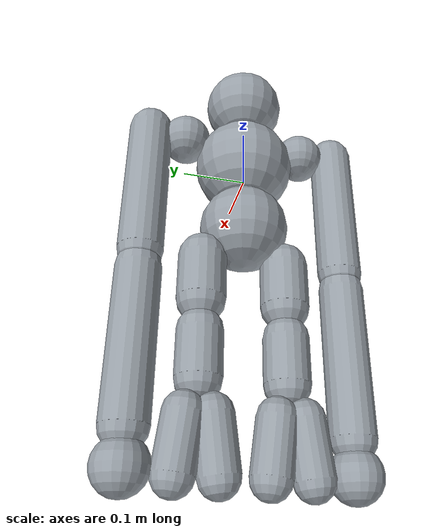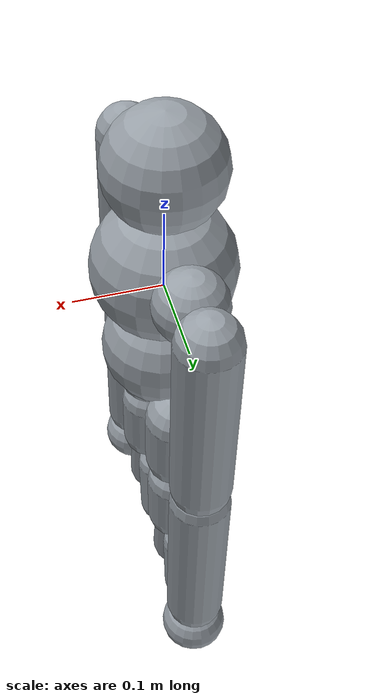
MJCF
<mujoco>
    <compiler angle="degree" inertiafromgeom="true"/>
    <default>
        <joint armature="0.01" damping=".1" limited="true"/>
        <geom conaffinity="3" condim="3" contype="3" friction="1.2 0.1 0.1" density="700" rgba="0.6 0.63 0.66 1"/>
    </default>
    <worldbody>
        <body name="gibbon3d" pos="0 0 0">
            <joint armature="0" axis="1 0 0" damping="0" limited="false" name="ignorex" pos="0 0 0" stiffness="0" type="slide"/>
            <joint armature="0" axis="0 0 1" damping="0" limited="false" name="ignorez" pos="0 0 0" stiffness="0" type="slide"/>
            <joint armature="0" axis="0 1 0" damping="0" limited="false" name="ignorey" pos="0 0 0" stiffness="0" type="hinge"/>
            <body name="torso" pos="0 0 0.03">
                <geom pos="0 0 0" size=".08" conaffinity="1" contype="1" type="sphere"/>
            </body>
            <body name="head" pos="0 0 0.16">
                <geom pos="0 0 0" size=".065" type="sphere"/>
            </body>
            <geom pos="0 -0.1 0.07" size=".04" conaffinity="0" contype="0" type="sphere"/>
            <geom pos="0 0.1 0.07" size=".04" conaffinity="0" contype="0" type="sphere"/>
            <body name="waist" pos="0 0 -0.15">

                <body name="pelvis_marker" pos="0 0 0.06">
                    <geom pos="0 0 0" size="0.01" conaffinity="0" contype="0" type="sphere" mass="0" />
                </body>
                <joint axis="0 1 0" name="abdomen_y" pos="0 0 0.095" range="-80 15" stiffness="0" type="hinge"/>
                <body name="pelvis" pos="0 0 -0.04">
                    <geom pos="0 0 0.1" size="0.07" conaffinity="2" contype="2" type="sphere"/>
                    <body name="right_thigh" pos="0 -0.065 0.04">
                        <joint axis="0 1 0" name="right_hip_y" pos="0 0 0" range="-100 20" stiffness="0" type="hinge"/>
                        <geom fromto="0 0 0 0 0 -.07" size="0.0375" type="capsule"/>
                        <body name="right_shin" pos="0 0 -0.12">
                            <joint axis="0 1 0" name="right_knee" pos="0 0 .02" range="-5 160" stiffness="0" type="hinge"/>
                            <geom fromto="0 0 0 0 0 -.07" size="0.035" type="capsule"/>
                            <body name="right_foot" pos="0 0 -0.12">
                                <joint axis="0 1 0" name="right_ankle" pos="0 0 0" range="-110 -50" stiffness="0" type="hinge"/>
                                <geom fromto="-0.01 0.02 0 -0.01 0.03 -0.08" type="capsule" size="0.03"/>
                                <geom fromto="-0.01 -0.02 0 -0.01 -0.03 -0.08" type="capsule" size="0.03"/>
                            </body>
                        </body>
                    </body>
                    <body name="left_thigh" pos="0 0.065 0.04">
                        <joint axis="0 1 0" name="left_hip_y" pos="0 0 0" range="-100 20" stiffness="0" type="hinge"/>
                        <geom fromto="0 0 0 0 0 -.07" size="0.0375" type="capsule"/>
                        <body name="left_shin" pos="0 0 -0.12">
                            <joint axis="0 1 0" name="left_knee" pos="0 0 .02" range="-5 160" stiffness="0" type="hinge"/>
                            <geom fromto="0 0 0 0 0 -.07" size="0.035" type="capsule"/>
                            <body name="left_foot" pos="0 0 -0.12">
                                <joint axis="0 1 0" name="left_ankle" pos="0 0 0" range="-110 -50" stiffness="0" type="hinge"/>
                                <geom fromto="-0.01 0.02 0 -0.01 0.03 -0.08" type="capsule" size="0.03"/>
                                <geom fromto="-0.01 -0.02 0 -0.01 -0.03 -0.08" type="capsule" size="0.03"/>
                            </body>
                        </body>
                    </body>
                </body>
            </body>
            <body name="right_upper_arm" pos="0 -0.16 0.08">
                <joint axis="0 1 0" name="right_shoulder_y" pos="0 0 0" range="-240 35" limited="false" stiffness="0" type="hinge"/>
                <geom fromto="0 0 0 0 0 -.23" size="0.035" type="capsule"/>
                <body name="right_lower_arm" pos="0 0 -.26">
                    <joint axis="0 1 0" name="right_elbow_y" pos="0 0 0" range="-160 5" stiffness="0" type="hinge"/>
                    <geom fromto="0 0 0 0 0 -.23" size="0.035" type="capsule"/>
                    <body name="right_hand" pos="0 0 -.28">
                        <joint axis="0 1 0" name="right_wrist" pos="0 0 0" range="-90 90" stiffness="0" type="hinge"/>
                        <geom pos="0 0 0" size=".04" type="sphere" mass="0.4"/>
                    </body>
                </body>
            </body>
            <body name="left_upper_arm" pos="0 0.16 0.08">
                <joint axis="0 1 0" name="left_shoulder_y" pos="0 0 0" range="-240 35" limited="false" stiffness="0" type="hinge"/>
                <geom fromto="0 0 0 0 0 -.23" size="0.035" type="capsule"/>
                <body name="left_lower_arm" pos="0 0 -.26">
                    <joint axis="0 1 0" name="left_elbow_y" pos="0 0 0" range="-160 5" stiffness="0" type="hinge"/>
                    <geom fromto="0 0 0 0 0 -.23" size="0.035" type="capsule"/>
                    <body name="left_hand" pos="0 0 -.28">
                        <joint axis="0 1 0" name="left_wrist" pos="0 0 0" range="-90 90" stiffness="0" type="hinge"/>
                        <geom pos="0 0 0" size=".04" type="sphere" mass="0.4"/>
                    </body>
                </body>
            </body>
        </body>
    </worldbody>
</mujoco>
